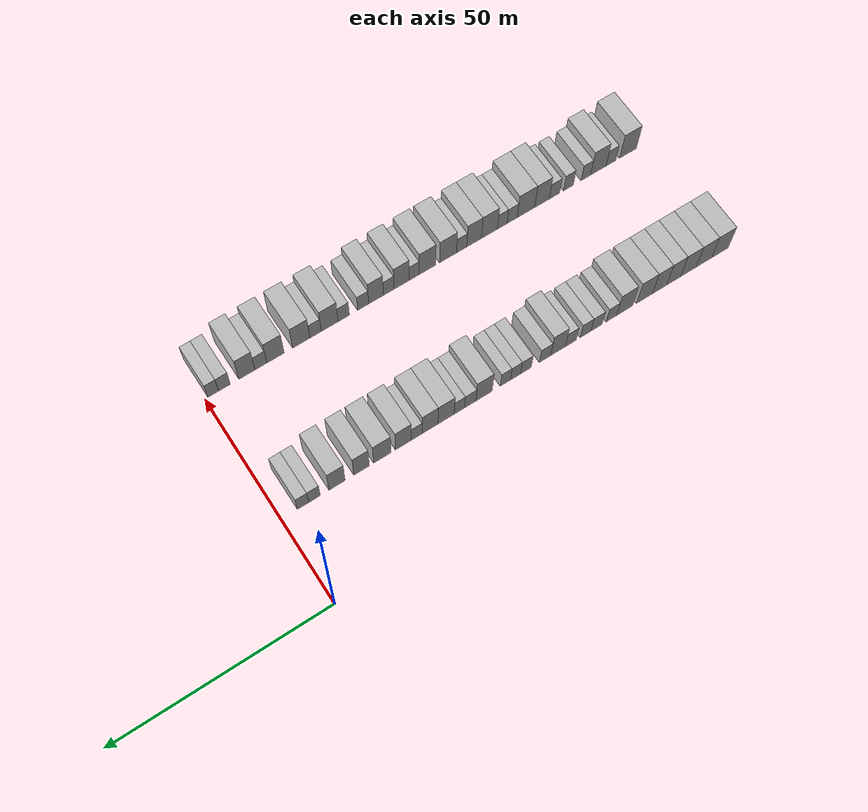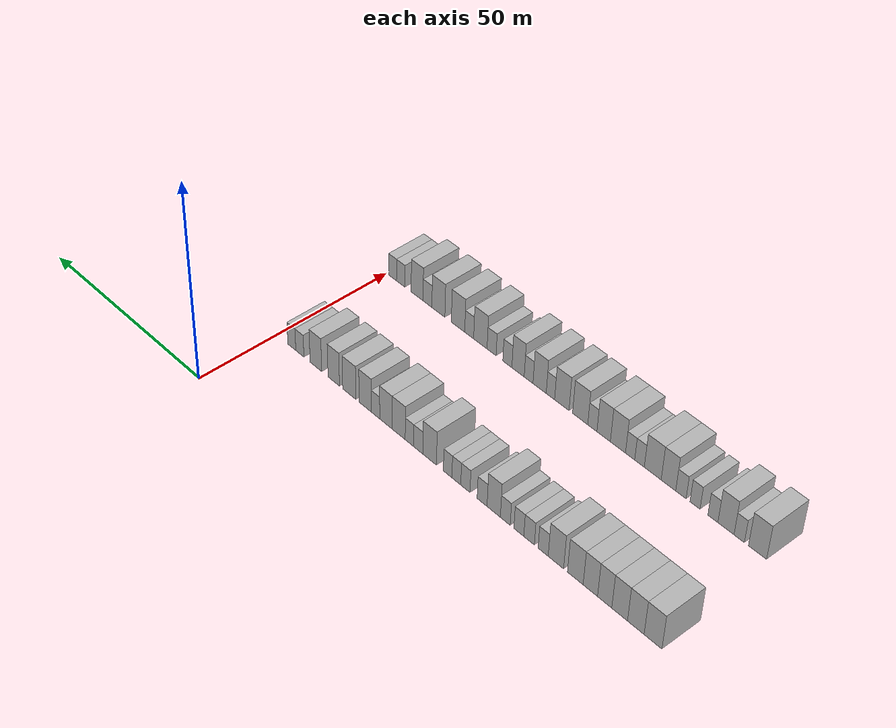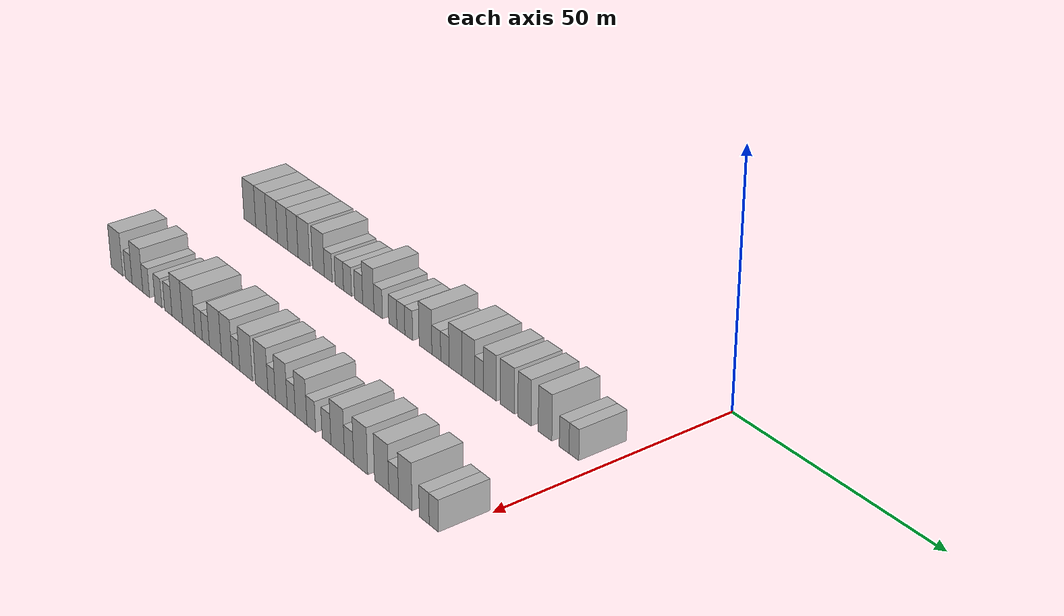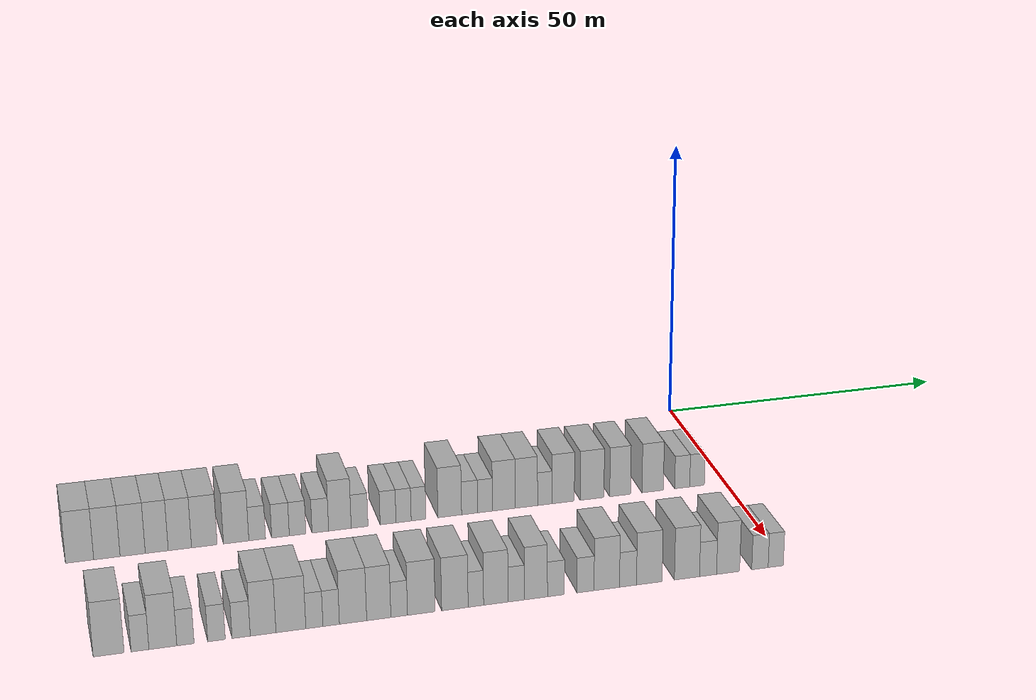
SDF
<sdf version="1.6">
 <world name="default">
  <model name="building_29">
   <static>1</static>
   <pose>25.0000 -107.1760 0 0.000000 0.000000 0.000000</pose>
   <link name="link">
    <pose>0 0 4.50 0 0 0</pose>
    <collision name="collision"><geometry><box><size>10.0000 4.3689 9.0000</size></box></geometry></collision>
    <visual name="visual">
     <cast_shadows>0</cast_shadows>
     <geometry><box><size>10.0000 4.3689 9.0000</size></box></geometry>
     <material>
      <script>
       <uri>model://HANNAS_wall/materials/scripts</uri>
       <uri>model://HANNAS_wall/materials/textures</uri>
       <name>vrc/HANNAS_wall</name>
      </script>
     </material>
    </visual>
   </link>
  </model>
  <model name="building_30">
   <static>1</static>
   <pose>25.0000 -102.9325 0 0.000000 0.000000 0.000000</pose>
   <link name="link">
    <pose>0 0 4.50 0 0 0</pose>
    <collision name="collision"><geometry><box><size>10.0000 4.1180 9.0000</size></box></geometry></collision>
    <visual name="visual">
     <cast_shadows>0</cast_shadows>
     <geometry><box><size>10.0000 4.1180 9.0000</size></box></geometry>
     <material>
      <script>
       <uri>model://HANNAS_wall/materials/scripts</uri>
       <uri>model://HANNAS_wall/materials/textures</uri>
       <name>vrc/HANNAS_wall</name>
      </script>
     </material>
    </visual>
   </link>
  </model>
  <model name="building_31">
   <static>1</static>
   <pose>25.0000 -98.9012 0 0.000000 0.000000 0.000000</pose>
   <link name="link">
    <pose>0 0 4.50 0 0 0</pose>
    <collision name="collision"><geometry><box><size>10.0000 3.9447 9.0000</size></box></geometry></collision>
    <visual name="visual">
     <cast_shadows>0</cast_shadows>
     <geometry><box><size>10.0000 3.9447 9.0000</size></box></geometry>
     <material>
      <script>
       <uri>model://HANNAS_wall/materials/scripts</uri>
       <uri>model://HANNAS_wall/materials/textures</uri>
       <name>vrc/HANNAS_wall</name>
      </script>
     </material>
    </visual>
   </link>
  </model>
  <model name="building_32">
   <static>1</static>
   <pose>25.0000 -95.1221 0 0.000000 0.000000 0.000000</pose>
   <link name="link">
    <pose>0 0 4.50 0 0 0</pose>
    <collision name="collision"><geometry><box><size>10.0000 3.6135 9.0000</size></box></geometry></collision>
    <visual name="visual">
     <cast_shadows>0</cast_shadows>
     <geometry><box><size>10.0000 3.6135 9.0000</size></box></geometry>
     <material>
      <script>
       <uri>model://HANNAS_wall/materials/scripts</uri>
       <uri>model://HANNAS_wall/materials/textures</uri>
       <name>vrc/HANNAS_wall</name>
      </script>
     </material>
    </visual>
   </link>
  </model>
  <model name="building_33">
   <static>1</static>
   <pose>25.0000 -91.4711 0 0.000000 0.000000 0.000000</pose>
   <link name="link">
    <pose>0 0 4.50 0 0 0</pose>
    <collision name="collision"><geometry><box><size>10.0000 3.6884 9.0000</size></box></geometry></collision>
    <visual name="visual">
     <cast_shadows>0</cast_shadows>
     <geometry><box><size>10.0000 3.6884 9.0000</size></box></geometry>
     <material>
      <script>
       <uri>model://HANNAS_wall/materials/scripts</uri>
       <uri>model://HANNAS_wall/materials/textures</uri>
       <name>vrc/HANNAS_wall</name>
      </script>
     </material>
    </visual>
   </link>
  </model>
  <model name="building_34">
   <static>1</static>
   <pose>25.0000 -87.5866 0 0.000000 0.000000 0.000000</pose>
   <link name="link">
    <pose>0 0 4.50 0 0 0</pose>
    <collision name="collision"><geometry><box><size>10.0000 4.0806 9.0000</size></box></geometry></collision>
    <visual name="visual">
     <cast_shadows>0</cast_shadows>
     <geometry><box><size>10.0000 4.0806 9.0000</size></box></geometry>
     <material>
      <script>
       <uri>model://HANNAS_wall/materials/scripts</uri>
       <uri>model://HANNAS_wall/materials/textures</uri>
       <name>vrc/HANNAS_wall</name>
      </script>
     </material>
    </visual>
   </link>
  </model>
  <model name="building_35">
   <static>1</static>
   <pose>25.0000 -82.5160 0 0.000000 0.000000 0.000000</pose>
   <link name="link">
    <pose>0 0 4.50 0 0 0</pose>
    <collision name="collision"><geometry><box><size>10.0000 4.0606 9.0000</size></box></geometry></collision>
    <visual name="visual">
     <cast_shadows>0</cast_shadows>
     <geometry><box><size>10.0000 4.0606 9.0000</size></box></geometry>
     <material>
      <script>
       <uri>model://HANNAS_wall/materials/scripts</uri>
       <uri>model://HANNAS_wall/materials/textures</uri>
       <name>vrc/HANNAS_wall</name>
      </script>
     </material>
    </visual>
   </link>
  </model>
  <model name="building_36">
   <static>1</static>
   <pose>25.0000 -79.1424 0 0.000000 0.000000 0.000000</pose>
   <link name="link">
    <pose>0 0 3.00 0 0 0</pose>
    <collision name="collision"><geometry><box><size>10.0000 2.6865 6.0000</size></box></geometry></collision>
    <visual name="visual">
     <cast_shadows>0</cast_shadows>
     <geometry><box><size>10.0000 2.6865 6.0000</size></box></geometry>
     <material>
      <script>
       <uri>model://HANNAS_wall/materials/scripts</uri>
       <uri>model://HANNAS_wall/materials/textures</uri>
       <name>vrc/HANNAS_wall</name>
      </script>
     </material>
    </visual>
   </link>
  </model>
  <model name="building_37">
   <static>1</static>
   <pose>25.0000 -75.3794 0 0.000000 0.000000 0.000000</pose>
   <link name="link">
    <pose>0 0 3.00 0 0 0</pose>
    <collision name="collision"><geometry><box><size>10.0000 2.8395 6.0000</size></box></geometry></collision>
    <visual name="visual">
     <cast_shadows>0</cast_shadows>
     <geometry><box><size>10.0000 2.8395 6.0000</size></box></geometry>
     <material>
      <script>
       <uri>model://HANNAS_wall/materials/scripts</uri>
       <uri>model://HANNAS_wall/materials/textures</uri>
       <name>vrc/HANNAS_wall</name>
      </script>
     </material>
    </visual>
   </link>
  </model>
  <model name="building_38">
   <static>1</static>
   <pose>25.0000 -72.6136 0 0.000000 0.000000 0.000000</pose>
   <link name="link">
    <pose>0 0 3.00 0 0 0</pose>
    <collision name="collision"><geometry><box><size>10.0000 2.6922 6.0000</size></box></geometry></collision>
    <visual name="visual">
     <cast_shadows>0</cast_shadows>
     <geometry><box><size>10.0000 2.6922 6.0000</size></box></geometry>
     <material>
      <script>
       <uri>model://HANNAS_wall/materials/scripts</uri>
       <uri>model://HANNAS_wall/materials/textures</uri>
       <name>vrc/HANNAS_wall</name>
      </script>
     </material>
    </visual>
   </link>
  </model>
  <model name="building_39">
   <static>1</static>
   <pose>25.0000 -68.9163 0 0.000000 0.000000 0.000000</pose>
   <link name="link">
    <pose>0 0 3.00 0 0 0</pose>
    <collision name="collision"><geometry><box><size>10.0000 2.7024 6.0000</size></box></geometry></collision>
    <visual name="visual">
     <cast_shadows>0</cast_shadows>
     <geometry><box><size>10.0000 2.7024 6.0000</size></box></geometry>
     <material>
      <script>
       <uri>model://HANNAS_wall/materials/scripts</uri>
       <uri>model://HANNAS_wall/materials/textures</uri>
       <name>vrc/HANNAS_wall</name>
      </script>
     </material>
    </visual>
   </link>
  </model>
  <model name="building_40">
   <static>1</static>
   <pose>25.0000 -65.7178 0 0.000000 0.000000 0.000000</pose>
   <link name="link">
    <pose>0 0 4.50 0 0 0</pose>
    <collision name="collision"><geometry><box><size>10.0000 3.6947 9.0000</size></box></geometry></collision>
    <visual name="visual">
     <cast_shadows>0</cast_shadows>
     <geometry><box><size>10.0000 3.6947 9.0000</size></box></geometry>
     <material>
      <script>
       <uri>model://HANNAS_wall/materials/scripts</uri>
       <uri>model://HANNAS_wall/materials/textures</uri>
       <name>vrc/HANNAS_wall</name>
      </script>
     </material>
    </visual>
   </link>
  </model>
  <model name="building_41">
   <static>1</static>
   <pose>25.0000 -62.4882 0 0.000000 0.000000 0.000000</pose>
   <link name="link">
    <pose>0 0 3.00 0 0 0</pose>
    <collision name="collision"><geometry><box><size>10.0000 2.7646 6.0000</size></box></geometry></collision>
    <visual name="visual">
     <cast_shadows>0</cast_shadows>
     <geometry><box><size>10.0000 2.7646 6.0000</size></box></geometry>
     <material>
      <script>
       <uri>model://HANNAS_wall/materials/scripts</uri>
       <uri>model://HANNAS_wall/materials/textures</uri>
       <name>vrc/HANNAS_wall</name>
      </script>
     </material>
    </visual>
   </link>
  </model>
  <model name="building_42">
   <static>1</static>
   <pose>25.0000 -57.7956 0 0.000000 0.000000 0.000000</pose>
   <link name="link">
    <pose>0 0 3.00 0 0 0</pose>
    <collision name="collision"><geometry><box><size>10.0000 2.6207 6.0000</size></box></geometry></collision>
    <visual name="visual">
     <cast_shadows>0</cast_shadows>
     <geometry><box><size>10.0000 2.6207 6.0000</size></box></geometry>
     <material>
      <script>
       <uri>model://HANNAS_wall/materials/scripts</uri>
       <uri>model://HANNAS_wall/materials/textures</uri>
       <name>vrc/HANNAS_wall</name>
      </script>
     </material>
    </visual>
   </link>
  </model>
  <model name="building_43">
   <static>1</static>
   <pose>25.0000 -55.2226 0 0.000000 0.000000 0.000000</pose>
   <link name="link">
    <pose>0 0 3.00 0 0 0</pose>
    <collision name="collision"><geometry><box><size>10.0000 2.5253 6.0000</size></box></geometry></collision>
    <visual name="visual">
     <cast_shadows>0</cast_shadows>
     <geometry><box><size>10.0000 2.5253 6.0000</size></box></geometry>
     <material>
      <script>
       <uri>model://HANNAS_wall/materials/scripts</uri>
       <uri>model://HANNAS_wall/materials/textures</uri>
       <name>vrc/HANNAS_wall</name>
      </script>
     </material>
    </visual>
   </link>
  </model>
  <model name="building_44">
   <static>1</static>
   <pose>25.0000 -52.7311 0 0.000000 0.000000 0.000000</pose>
   <link name="link">
    <pose>0 0 3.00 0 0 0</pose>
    <collision name="collision"><geometry><box><size>10.0000 2.4576 6.0000</size></box></geometry></collision>
    <visual name="visual">
     <cast_shadows>0</cast_shadows>
     <geometry><box><size>10.0000 2.4576 6.0000</size></box></geometry>
     <material>
      <script>
       <uri>model://HANNAS_wall/materials/scripts</uri>
       <uri>model://HANNAS_wall/materials/textures</uri>
       <name>vrc/HANNAS_wall</name>
      </script>
     </material>
    </visual>
   </link>
  </model>
  <model name="building_45">
   <static>1</static>
   <pose>25.0000 -47.5219 0 0.000000 0.000000 0.000000</pose>
   <link name="link">
    <pose>0 0 4.50 0 0 0</pose>
    <collision name="collision"><geometry><box><size>10.0000 3.9609 9.0000</size></box></geometry></collision>
    <visual name="visual">
     <cast_shadows>0</cast_shadows>
     <geometry><box><size>10.0000 3.9609 9.0000</size></box></geometry>
     <material>
      <script>
       <uri>model://HANNAS_wall/materials/scripts</uri>
       <uri>model://HANNAS_wall/materials/textures</uri>
       <name>vrc/HANNAS_wall</name>
      </script>
     </material>
    </visual>
   </link>
  </model>
  <model name="building_46">
   <static>1</static>
   <pose>25.0000 -44.1928 0 0.000000 0.000000 0.000000</pose>
   <link name="link">
    <pose>0 0 3.00 0 0 0</pose>
    <collision name="collision"><geometry><box><size>10.0000 2.6975 6.0000</size></box></geometry></collision>
    <visual name="visual">
     <cast_shadows>0</cast_shadows>
     <geometry><box><size>10.0000 2.6975 6.0000</size></box></geometry>
     <material>
      <script>
       <uri>model://HANNAS_wall/materials/scripts</uri>
       <uri>model://HANNAS_wall/materials/textures</uri>
       <name>vrc/HANNAS_wall</name>
      </script>
     </material>
    </visual>
   </link>
  </model>
  <model name="building_47">
   <static>1</static>
   <pose>25.0000 -41.5849 0 0.000000 0.000000 0.000000</pose>
   <link name="link">
    <pose>0 0 3.00 0 0 0</pose>
    <collision name="collision"><geometry><box><size>10.0000 2.5183 6.0000</size></box></geometry></collision>
    <visual name="visual">
     <cast_shadows>0</cast_shadows>
     <geometry><box><size>10.0000 2.5183 6.0000</size></box></geometry>
     <material>
      <script>
       <uri>model://HANNAS_wall/materials/scripts</uri>
       <uri>model://HANNAS_wall/materials/textures</uri>
       <name>vrc/HANNAS_wall</name>
      </script>
     </material>
    </visual>
   </link>
  </model>
  <model name="building_48">
   <static>1</static>
   <pose>25.0000 -38.3854 0 0.000000 0.000000 0.000000</pose>
   <link name="link">
    <pose>0 0 4.50 0 0 0</pose>
    <collision name="collision"><geometry><box><size>10.0000 3.8806 9.0000</size></box></geometry></collision>
    <visual name="visual">
     <cast_shadows>0</cast_shadows>
     <geometry><box><size>10.0000 3.8806 9.0000</size></box></geometry>
     <material>
      <script>
       <uri>model://HANNAS_wall/materials/scripts</uri>
       <uri>model://HANNAS_wall/materials/textures</uri>
       <name>vrc/HANNAS_wall</name>
      </script>
     </material>
    </visual>
   </link>
  </model>
  <model name="building_49">
   <static>1</static>
   <pose>25.0000 -34.5562 0 0.000000 0.000000 0.000000</pose>
   <link name="link">
    <pose>0 0 4.50 0 0 0</pose>
    <collision name="collision"><geometry><box><size>10.0000 3.7779 9.0000</size></box></geometry></collision>
    <visual name="visual">
     <cast_shadows>0</cast_shadows>
     <geometry><box><size>10.0000 3.7779 9.0000</size></box></geometry>
     <material>
      <script>
       <uri>model://HANNAS_wall/materials/scripts</uri>
       <uri>model://HANNAS_wall/materials/textures</uri>
       <name>vrc/HANNAS_wall</name>
      </script>
     </material>
    </visual>
   </link>
  </model>
  <model name="building_50">
   <static>1</static>
   <pose>25.0000 -31.4107 0 0.000000 0.000000 0.000000</pose>
   <link name="link">
    <pose>0 0 3.00 0 0 0</pose>
    <collision name="collision"><geometry><box><size>10.0000 2.5132 6.0000</size></box></geometry></collision>
    <visual name="visual">
     <cast_shadows>0</cast_shadows>
     <geometry><box><size>10.0000 2.5132 6.0000</size></box></geometry>
     <material>
      <script>
       <uri>model://HANNAS_wall/materials/scripts</uri>
       <uri>model://HANNAS_wall/materials/textures</uri>
       <name>vrc/HANNAS_wall</name>
      </script>
     </material>
    </visual>
   </link>
  </model>
  <model name="building_51">
   <static>1</static>
   <pose>25.0000 -28.2567 0 0.000000 0.000000 0.000000</pose>
   <link name="link">
    <pose>0 0 4.50 0 0 0</pose>
    <collision name="collision"><geometry><box><size>10.0000 3.7947 9.0000</size></box></geometry></collision>
    <visual name="visual">
     <cast_shadows>0</cast_shadows>
     <geometry><box><size>10.0000 3.7947 9.0000</size></box></geometry>
     <material>
      <script>
       <uri>model://HANNAS_wall/materials/scripts</uri>
       <uri>model://HANNAS_wall/materials/textures</uri>
       <name>vrc/HANNAS_wall</name>
      </script>
     </material>
    </visual>
   </link>
  </model>
  <model name="building_52">
   <static>1</static>
   <pose>25.0000 -23.2993 0 0.000000 0.000000 0.000000</pose>
   <link name="link">
    <pose>0 0 4.50 0 0 0</pose>
    <collision name="collision"><geometry><box><size>10.0000 4.1200 9.0000</size></box></geometry></collision>
    <visual name="visual">
     <cast_shadows>0</cast_shadows>
     <geometry><box><size>10.0000 4.1200 9.0000</size></box></geometry>
     <material>
      <script>
       <uri>model://HANNAS_wall/materials/scripts</uri>
       <uri>model://HANNAS_wall/materials/textures</uri>
       <name>vrc/HANNAS_wall</name>
      </script>
     </material>
    </visual>
   </link>
  </model>
  <model name="building_53">
   <static>1</static>
   <pose>25.0000 -18.4316 0 0.000000 0.000000 0.000000</pose>
   <link name="link">
    <pose>0 0 4.50 0 0 0</pose>
    <collision name="collision"><geometry><box><size>10.0000 3.6155 9.0000</size></box></geometry></collision>
    <visual name="visual">
     <cast_shadows>0</cast_shadows>
     <geometry><box><size>10.0000 3.6155 9.0000</size></box></geometry>
     <material>
      <script>
       <uri>model://HANNAS_wall/materials/scripts</uri>
       <uri>model://HANNAS_wall/materials/textures</uri>
       <name>vrc/HANNAS_wall</name>
      </script>
     </material>
    </visual>
   </link>
  </model>
  <model name="building_54">
   <static>1</static>
   <pose>25.0000 -12.7551 0 0.000000 0.000000 0.000000</pose>
   <link name="link">
    <pose>0 0 4.50 0 0 0</pose>
    <collision name="collision"><geometry><box><size>10.0000 3.7376 9.0000</size></box></geometry></collision>
    <visual name="visual">
     <cast_shadows>0</cast_shadows>
     <geometry><box><size>10.0000 3.7376 9.0000</size></box></geometry>
     <material>
      <script>
       <uri>model://HANNAS_wall/materials/scripts</uri>
       <uri>model://HANNAS_wall/materials/textures</uri>
       <name>vrc/HANNAS_wall</name>
      </script>
     </material>
    </visual>
   </link>
  </model>
  <model name="building_55">
   <static>1</static>
   <pose>25.0000 -7.5630 0 0.000000 0.000000 0.000000</pose>
   <link name="link">
    <pose>0 0 3.00 0 0 0</pose>
    <collision name="collision"><geometry><box><size>10.0000 2.6465 6.0000</size></box></geometry></collision>
    <visual name="visual">
     <cast_shadows>0</cast_shadows>
     <geometry><box><size>10.0000 2.6465 6.0000</size></box></geometry>
     <material>
      <script>
       <uri>model://HANNAS_wall/materials/scripts</uri>
       <uri>model://HANNAS_wall/materials/textures</uri>
       <name>vrc/HANNAS_wall</name>
      </script>
     </material>
    </visual>
   </link>
  </model>
  <model name="building_56">
   <static>1</static>
   <pose>25.0000 -4.9420 0 0.000000 0.000000 0.000000</pose>
   <link name="link">
    <pose>0 0 3.00 0 0 0</pose>
    <collision name="collision"><geometry><box><size>10.0000 2.5955 6.0000</size></box></geometry></collision>
    <visual name="visual">
     <cast_shadows>0</cast_shadows>
     <geometry><box><size>10.0000 2.5955 6.0000</size></box></geometry>
     <material>
      <script>
       <uri>model://HANNAS_wall/materials/scripts</uri>
       <uri>model://HANNAS_wall/materials/textures</uri>
       <name>vrc/HANNAS_wall</name>
      </script>
     </material>
    </visual>
   </link>
  </model>
  <model name="building_140">
   <static>1</static>
   <pose>55.0000 -105.1692 0 0.000000 0.000000 0.000000</pose>
   <link name="link">
    <pose>0 0 4.50 0 0 0</pose>
    <collision name="collision"><geometry><box><size>10.0000 4.4724 9.0000</size></box></geometry></collision>
    <visual name="visual">
     <cast_shadows>0</cast_shadows>
     <geometry><box><size>10.0000 4.4724 9.0000</size></box></geometry>
     <material>
      <script>
       <uri>model://HANNAS_wall/materials/scripts</uri>
       <uri>model://HANNAS_wall/materials/textures</uri>
       <name>vrc/HANNAS_wall</name>
      </script>
     </material>
    </visual>
   </link>
  </model>
  <model name="building_141">
   <static>1</static>
   <pose>55.0000 -100.6413 0 0.000000 0.000000 0.000000</pose>
   <link name="link">
    <pose>0 0 3.00 0 0 0</pose>
    <collision name="collision"><geometry><box><size>10.0000 2.5834 6.0000</size></box></geometry></collision>
    <visual name="visual">
     <cast_shadows>0</cast_shadows>
     <geometry><box><size>10.0000 2.5834 6.0000</size></box></geometry>
     <material>
      <script>
       <uri>model://HANNAS_wall/materials/scripts</uri>
       <uri>model://HANNAS_wall/materials/textures</uri>
       <name>vrc/HANNAS_wall</name>
      </script>
     </material>
    </visual>
   </link>
  </model>
  <model name="building_142">
   <static>1</static>
   <pose>55.0000 -97.3165 0 0.000000 0.000000 0.000000</pose>
   <link name="link">
    <pose>0 0 4.50 0 0 0</pose>
    <collision name="collision"><geometry><box><size>10.0000 4.0661 9.0000</size></box></geometry></collision>
    <visual name="visual">
     <cast_shadows>0</cast_shadows>
     <geometry><box><size>10.0000 4.0661 9.0000</size></box></geometry>
     <material>
      <script>
       <uri>model://HANNAS_wall/materials/scripts</uri>
       <uri>model://HANNAS_wall/materials/textures</uri>
       <name>vrc/HANNAS_wall</name>
      </script>
     </material>
    </visual>
   </link>
  </model>
  <model name="building_143">
   <static>1</static>
   <pose>55.0000 -94.0198 0 0.000000 0.000000 0.000000</pose>
   <link name="link">
    <pose>0 0 3.00 0 0 0</pose>
    <collision name="collision"><geometry><box><size>10.0000 2.5273 6.0000</size></box></geometry></collision>
    <visual name="visual">
     <cast_shadows>0</cast_shadows>
     <geometry><box><size>10.0000 2.5273 6.0000</size></box></geometry>
     <material>
      <script>
       <uri>model://HANNAS_wall/materials/scripts</uri>
       <uri>model://HANNAS_wall/materials/textures</uri>
       <name>vrc/HANNAS_wall</name>
      </script>
     </material>
    </visual>
   </link>
  </model>
  <model name="building_144">
   <static>1</static>
   <pose>55.0000 -89.4631 0 0.000000 0.000000 0.000000</pose>
   <link name="link">
    <pose>0 0 3.00 0 0 0</pose>
    <collision name="collision"><geometry><box><size>10.0000 2.5861 6.0000</size></box></geometry></collision>
    <visual name="visual">
     <cast_shadows>0</cast_shadows>
     <geometry><box><size>10.0000 2.5861 6.0000</size></box></geometry>
     <material>
      <script>
       <uri>model://HANNAS_wall/materials/scripts</uri>
       <uri>model://HANNAS_wall/materials/textures</uri>
       <name>vrc/HANNAS_wall</name>
      </script>
     </material>
    </visual>
   </link>
  </model>
  <model name="building_145">
   <static>1</static>
   <pose>55.0000 -85.8234 0 0.000000 0.000000 0.000000</pose>
   <link name="link">
    <pose>0 0 3.00 0 0 0</pose>
    <collision name="collision"><geometry><box><size>10.0000 2.6931 6.0000</size></box></geometry></collision>
    <visual name="visual">
     <cast_shadows>0</cast_shadows>
     <geometry><box><size>10.0000 2.6931 6.0000</size></box></geometry>
     <material>
      <script>
       <uri>model://HANNAS_wall/materials/scripts</uri>
       <uri>model://HANNAS_wall/materials/textures</uri>
       <name>vrc/HANNAS_wall</name>
      </script>
     </material>
    </visual>
   </link>
  </model>
  <model name="building_146">
   <static>1</static>
   <pose>55.0000 -82.5668 0 0.000000 0.000000 0.000000</pose>
   <link name="link">
    <pose>0 0 4.50 0 0 0</pose>
    <collision name="collision"><geometry><box><size>10.0000 3.8202 9.0000</size></box></geometry></collision>
    <visual name="visual">
     <cast_shadows>0</cast_shadows>
     <geometry><box><size>10.0000 3.8202 9.0000</size></box></geometry>
     <material>
      <script>
       <uri>model://HANNAS_wall/materials/scripts</uri>
       <uri>model://HANNAS_wall/materials/textures</uri>
       <name>vrc/HANNAS_wall</name>
      </script>
     </material>
    </visual>
   </link>
  </model>
  <model name="building_147">
   <static>1</static>
   <pose>55.0000 -78.4203 0 0.000000 0.000000 0.000000</pose>
   <link name="link">
    <pose>0 0 4.50 0 0 0</pose>
    <collision name="collision"><geometry><box><size>10.0000 4.4729 9.0000</size></box></geometry></collision>
    <visual name="visual">
     <cast_shadows>0</cast_shadows>
     <geometry><box><size>10.0000 4.4729 9.0000</size></box></geometry>
     <material>
      <script>
       <uri>model://HANNAS_wall/materials/scripts</uri>
       <uri>model://HANNAS_wall/materials/textures</uri>
       <name>vrc/HANNAS_wall</name>
      </script>
     </material>
    </visual>
   </link>
  </model>
  <model name="building_148">
   <static>1</static>
   <pose>55.0000 -74.8975 0 0.000000 0.000000 0.000000</pose>
   <link name="link">
    <pose>0 0 3.00 0 0 0</pose>
    <collision name="collision"><geometry><box><size>10.0000 2.5726 6.0000</size></box></geometry></collision>
    <visual name="visual">
     <cast_shadows>0</cast_shadows>
     <geometry><box><size>10.0000 2.5726 6.0000</size></box></geometry>
     <material>
      <script>
       <uri>model://HANNAS_wall/materials/scripts</uri>
       <uri>model://HANNAS_wall/materials/textures</uri>
       <name>vrc/HANNAS_wall</name>
      </script>
     </material>
    </visual>
   </link>
  </model>
  <model name="building_149">
   <static>1</static>
   <pose>55.0000 -72.3692 0 0.000000 0.000000 0.000000</pose>
   <link name="link">
    <pose>0 0 3.00 0 0 0</pose>
    <collision name="collision"><geometry><box><size>10.0000 2.4842 6.0000</size></box></geometry></collision>
    <visual name="visual">
     <cast_shadows>0</cast_shadows>
     <geometry><box><size>10.0000 2.4842 6.0000</size></box></geometry>
     <material>
      <script>
       <uri>model://HANNAS_wall/materials/scripts</uri>
       <uri>model://HANNAS_wall/materials/textures</uri>
       <name>vrc/HANNAS_wall</name>
      </script>
     </material>
    </visual>
   </link>
  </model>
  <model name="building_150">
   <static>1</static>
   <pose>55.0000 -69.0618 0 0.000000 0.000000 0.000000</pose>
   <link name="link">
    <pose>0 0 4.50 0 0 0</pose>
    <collision name="collision"><geometry><box><size>10.0000 4.1306 9.0000</size></box></geometry></collision>
    <visual name="visual">
     <cast_shadows>0</cast_shadows>
     <geometry><box><size>10.0000 4.1306 9.0000</size></box></geometry>
     <material>
      <script>
       <uri>model://HANNAS_wall/materials/scripts</uri>
       <uri>model://HANNAS_wall/materials/textures</uri>
       <name>vrc/HANNAS_wall</name>
      </script>
     </material>
    </visual>
   </link>
  </model>
  <model name="building_151">
   <static>1</static>
   <pose>55.0000 -65.1527 0 0.000000 0.000000 0.000000</pose>
   <link name="link">
    <pose>0 0 4.50 0 0 0</pose>
    <collision name="collision"><geometry><box><size>10.0000 3.6876 9.0000</size></box></geometry></collision>
    <visual name="visual">
     <cast_shadows>0</cast_shadows>
     <geometry><box><size>10.0000 3.6876 9.0000</size></box></geometry>
     <material>
      <script>
       <uri>model://HANNAS_wall/materials/scripts</uri>
       <uri>model://HANNAS_wall/materials/textures</uri>
       <name>vrc/HANNAS_wall</name>
      </script>
     </material>
    </visual>
   </link>
  </model>
  <model name="building_152">
   <static>1</static>
   <pose>55.0000 -62.0331 0 0.000000 0.000000 0.000000</pose>
   <link name="link">
    <pose>0 0 3.00 0 0 0</pose>
    <collision name="collision"><geometry><box><size>10.0000 2.5514 6.0000</size></box></geometry></collision>
    <visual name="visual">
     <cast_shadows>0</cast_shadows>
     <geometry><box><size>10.0000 2.5514 6.0000</size></box></geometry>
     <material>
      <script>
       <uri>model://HANNAS_wall/materials/scripts</uri>
       <uri>model://HANNAS_wall/materials/textures</uri>
       <name>vrc/HANNAS_wall</name>
      </script>
     </material>
    </visual>
   </link>
  </model>
  <model name="building_153">
   <static>1</static>
   <pose>55.0000 -58.6291 0 0.000000 0.000000 0.000000</pose>
   <link name="link">
    <pose>0 0 4.50 0 0 0</pose>
    <collision name="collision"><geometry><box><size>10.0000 4.2567 9.0000</size></box></geometry></collision>
    <visual name="visual">
     <cast_shadows>0</cast_shadows>
     <geometry><box><size>10.0000 4.2567 9.0000</size></box></geometry>
     <material>
      <script>
       <uri>model://HANNAS_wall/materials/scripts</uri>
       <uri>model://HANNAS_wall/materials/textures</uri>
       <name>vrc/HANNAS_wall</name>
      </script>
     </material>
    </visual>
   </link>
  </model>
  <model name="building_154">
   <static>1</static>
   <pose>55.0000 -53.4510 0 0.000000 0.000000 0.000000</pose>
   <link name="link">
    <pose>0 0 4.50 0 0 0</pose>
    <collision name="collision"><geometry><box><size>10.0000 4.0994 9.0000</size></box></geometry></collision>
    <visual name="visual">
     <cast_shadows>0</cast_shadows>
     <geometry><box><size>10.0000 4.0994 9.0000</size></box></geometry>
     <material>
      <script>
       <uri>model://HANNAS_wall/materials/scripts</uri>
       <uri>model://HANNAS_wall/materials/textures</uri>
       <name>vrc/HANNAS_wall</name>
      </script>
     </material>
    </visual>
   </link>
  </model>
  <model name="building_155">
   <static>1</static>
   <pose>55.0000 -50.1982 0 0.000000 0.000000 0.000000</pose>
   <link name="link">
    <pose>0 0 3.00 0 0 0</pose>
    <collision name="collision"><geometry><box><size>10.0000 2.4062 6.0000</size></box></geometry></collision>
    <visual name="visual">
     <cast_shadows>0</cast_shadows>
     <geometry><box><size>10.0000 2.4062 6.0000</size></box></geometry>
     <material>
      <script>
       <uri>model://HANNAS_wall/materials/scripts</uri>
       <uri>model://HANNAS_wall/materials/textures</uri>
       <name>vrc/HANNAS_wall</name>
      </script>
     </material>
    </visual>
   </link>
  </model>
  <model name="building_156">
   <static>1</static>
   <pose>55.0000 -47.0807 0 0.000000 0.000000 0.000000</pose>
   <link name="link">
    <pose>0 0 4.50 0 0 0</pose>
    <collision name="collision"><geometry><box><size>10.0000 3.8289 9.0000</size></box></geometry></collision>
    <visual name="visual">
     <cast_shadows>0</cast_shadows>
     <geometry><box><size>10.0000 3.8289 9.0000</size></box></geometry>
     <material>
      <script>
       <uri>model://HANNAS_wall/materials/scripts</uri>
       <uri>model://HANNAS_wall/materials/textures</uri>
       <name>vrc/HANNAS_wall</name>
      </script>
     </material>
    </visual>
   </link>
  </model>
  <model name="building_157">
   <static>1</static>
   <pose>55.0000 -43.8817 0 0.000000 0.000000 0.000000</pose>
   <link name="link">
    <pose>0 0 3.00 0 0 0</pose>
    <collision name="collision"><geometry><box><size>10.0000 2.5691 6.0000</size></box></geometry></collision>
    <visual name="visual">
     <cast_shadows>0</cast_shadows>
     <geometry><box><size>10.0000 2.5691 6.0000</size></box></geometry>
     <material>
      <script>
       <uri>model://HANNAS_wall/materials/scripts</uri>
       <uri>model://HANNAS_wall/materials/textures</uri>
       <name>vrc/HANNAS_wall</name>
      </script>
     </material>
    </visual>
   </link>
  </model>
  <model name="building_158">
   <static>1</static>
   <pose>55.0000 -40.7841 0 0.000000 0.000000 0.000000</pose>
   <link name="link">
    <pose>0 0 4.50 0 0 0</pose>
    <collision name="collision"><geometry><box><size>10.0000 3.6262 9.0000</size></box></geometry></collision>
    <visual name="visual">
     <cast_shadows>0</cast_shadows>
     <geometry><box><size>10.0000 3.6262 9.0000</size></box></geometry>
     <material>
      <script>
       <uri>model://HANNAS_wall/materials/scripts</uri>
       <uri>model://HANNAS_wall/materials/textures</uri>
       <name>vrc/HANNAS_wall</name>
      </script>
     </material>
    </visual>
   </link>
  </model>
  <model name="building_159">
   <static>1</static>
   <pose>55.0000 -37.6261 0 0.000000 0.000000 0.000000</pose>
   <link name="link">
    <pose>0 0 3.00 0 0 0</pose>
    <collision name="collision"><geometry><box><size>10.0000 2.6898 6.0000</size></box></geometry></collision>
    <visual name="visual">
     <cast_shadows>0</cast_shadows>
     <geometry><box><size>10.0000 2.6898 6.0000</size></box></geometry>
     <material>
      <script>
       <uri>model://HANNAS_wall/materials/scripts</uri>
       <uri>model://HANNAS_wall/materials/textures</uri>
       <name>vrc/HANNAS_wall</name>
      </script>
     </material>
    </visual>
   </link>
  </model>
  <model name="building_160">
   <static>1</static>
   <pose>55.0000 -32.9214 0 0.000000 0.000000 0.000000</pose>
   <link name="link">
    <pose>0 0 3.00 0 0 0</pose>
    <collision name="collision"><geometry><box><size>10.0000 2.7197 6.0000</size></box></geometry></collision>
    <visual name="visual">
     <cast_shadows>0</cast_shadows>
     <geometry><box><size>10.0000 2.7197 6.0000</size></box></geometry>
     <material>
      <script>
       <uri>model://HANNAS_wall/materials/scripts</uri>
       <uri>model://HANNAS_wall/materials/textures</uri>
       <name>vrc/HANNAS_wall</name>
      </script>
     </material>
    </visual>
   </link>
  </model>
  <model name="building_161">
   <static>1</static>
   <pose>55.0000 -29.5239 0 0.000000 0.000000 0.000000</pose>
   <link name="link">
    <pose>0 0 4.50 0 0 0</pose>
    <collision name="collision"><geometry><box><size>10.0000 4.0752 9.0000</size></box></geometry></collision>
    <visual name="visual">
     <cast_shadows>0</cast_shadows>
     <geometry><box><size>10.0000 4.0752 9.0000</size></box></geometry>
     <material>
      <script>
       <uri>model://HANNAS_wall/materials/scripts</uri>
       <uri>model://HANNAS_wall/materials/textures</uri>
       <name>vrc/HANNAS_wall</name>
      </script>
     </material>
    </visual>
   </link>
  </model>
  <model name="building_162">
   <static>1</static>
   <pose>55.0000 -26.1229 0 0.000000 0.000000 0.000000</pose>
   <link name="link">
    <pose>0 0 3.00 0 0 0</pose>
    <collision name="collision"><geometry><box><size>10.0000 2.7269 6.0000</size></box></geometry></collision>
    <visual name="visual">
     <cast_shadows>0</cast_shadows>
     <geometry><box><size>10.0000 2.7269 6.0000</size></box></geometry>
     <material>
      <script>
       <uri>model://HANNAS_wall/materials/scripts</uri>
       <uri>model://HANNAS_wall/materials/textures</uri>
       <name>vrc/HANNAS_wall</name>
      </script>
     </material>
    </visual>
   </link>
  </model>
  <model name="building_163">
   <static>1</static>
   <pose>55.0000 -22.6896 0 0.000000 0.000000 0.000000</pose>
   <link name="link">
    <pose>0 0 4.50 0 0 0</pose>
    <collision name="collision"><geometry><box><size>10.0000 4.1397 9.0000</size></box></geometry></collision>
    <visual name="visual">
     <cast_shadows>0</cast_shadows>
     <geometry><box><size>10.0000 4.1397 9.0000</size></box></geometry>
     <material>
      <script>
       <uri>model://HANNAS_wall/materials/scripts</uri>
       <uri>model://HANNAS_wall/materials/textures</uri>
       <name>vrc/HANNAS_wall</name>
      </script>
     </material>
    </visual>
   </link>
  </model>
  <model name="building_164">
   <static>1</static>
   <pose>55.0000 -16.5752 0 0.000000 0.000000 0.000000</pose>
   <link name="link">
    <pose>0 0 4.50 0 0 0</pose>
    <collision name="collision"><geometry><box><size>10.0000 4.0891 9.0000</size></box></geometry></collision>
    <visual name="visual">
     <cast_shadows>0</cast_shadows>
     <geometry><box><size>10.0000 4.0891 9.0000</size></box></geometry>
     <material>
      <script>
       <uri>model://HANNAS_wall/materials/scripts</uri>
       <uri>model://HANNAS_wall/materials/textures</uri>
       <name>vrc/HANNAS_wall</name>
      </script>
     </material>
    </visual>
   </link>
  </model>
  <model name="building_165">
   <static>1</static>
   <pose>55.0000 -13.1326 0 0.000000 0.000000 0.000000</pose>
   <link name="link">
    <pose>0 0 3.00 0 0 0</pose>
    <collision name="collision"><geometry><box><size>10.0000 2.7959 6.0000</size></box></geometry></collision>
    <visual name="visual">
     <cast_shadows>0</cast_shadows>
     <geometry><box><size>10.0000 2.7959 6.0000</size></box></geometry>
     <material>
      <script>
       <uri>model://HANNAS_wall/materials/scripts</uri>
       <uri>model://HANNAS_wall/materials/textures</uri>
       <name>vrc/HANNAS_wall</name>
      </script>
     </material>
    </visual>
   </link>
  </model>
  <model name="building_166">
   <static>1</static>
   <pose>55.0000 -9.8348 0 0.000000 0.000000 0.000000</pose>
   <link name="link">
    <pose>0 0 4.50 0 0 0</pose>
    <collision name="collision"><geometry><box><size>10.0000 3.7998 9.0000</size></box></geometry></collision>
    <visual name="visual">
     <cast_shadows>0</cast_shadows>
     <geometry><box><size>10.0000 3.7998 9.0000</size></box></geometry>
     <material>
      <script>
       <uri>model://HANNAS_wall/materials/scripts</uri>
       <uri>model://HANNAS_wall/materials/textures</uri>
       <name>vrc/HANNAS_wall</name>
      </script>
     </material>
    </visual>
   </link>
  </model>
  <model name="building_167">
   <static>1</static>
   <pose>55.0000 -4.5741 0 0.000000 0.000000 0.000000</pose>
   <link name="link">
    <pose>0 0 3.00 0 0 0</pose>
    <collision name="collision"><geometry><box><size>10.0000 2.7215 6.0000</size></box></geometry></collision>
    <visual name="visual">
     <cast_shadows>0</cast_shadows>
     <geometry><box><size>10.0000 2.7215 6.0000</size></box></geometry>
     <material>
      <script>
       <uri>model://HANNAS_wall/materials/scripts</uri>
       <uri>model://HANNAS_wall/materials/textures</uri>
       <name>vrc/HANNAS_wall</name>
      </script>
     </material>
    </visual>
   </link>
  </model>
  <model name="building_168">
   <static>1</static>
   <pose>55.0000 -1.9531 0 0.000000 0.000000 0.000000</pose>
   <link name="link">
    <pose>0 0 3.00 0 0 0</pose>
    <collision name="collision"><geometry><box><size>10.0000 2.5205 6.0000</size></box></geometry></collision>
    <visual name="visual">
     <cast_shadows>0</cast_shadows>
     <geometry><box><size>10.0000 2.5205 6.0000</size></box></geometry>
     <material>
      <script>
       <uri>model://HANNAS_wall/materials/scripts</uri>
       <uri>model://HANNAS_wall/materials/textures</uri>
       <name>vrc/HANNAS_wall</name>
      </script>
     </material>
    </visual>
   </link>
  </model>
 </world>
</sdf>
